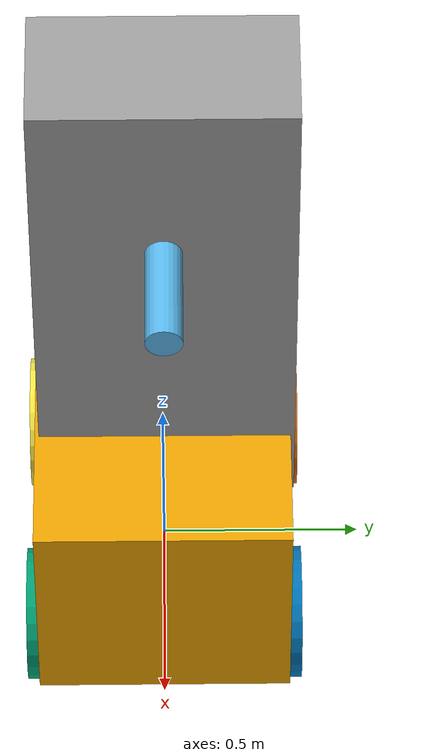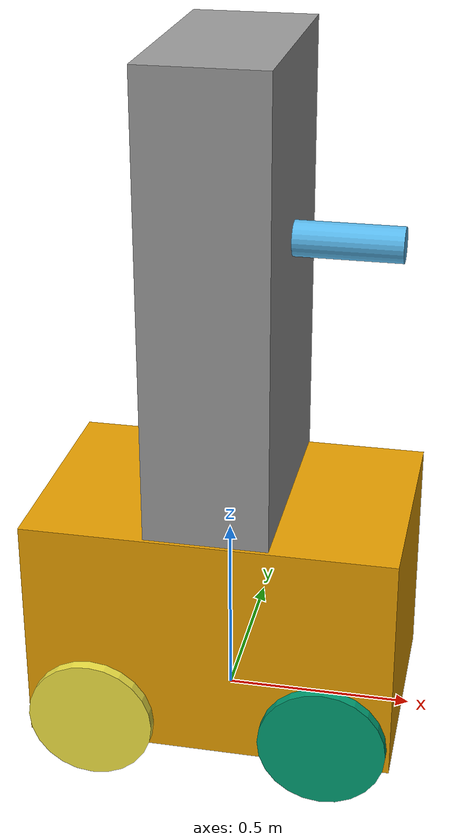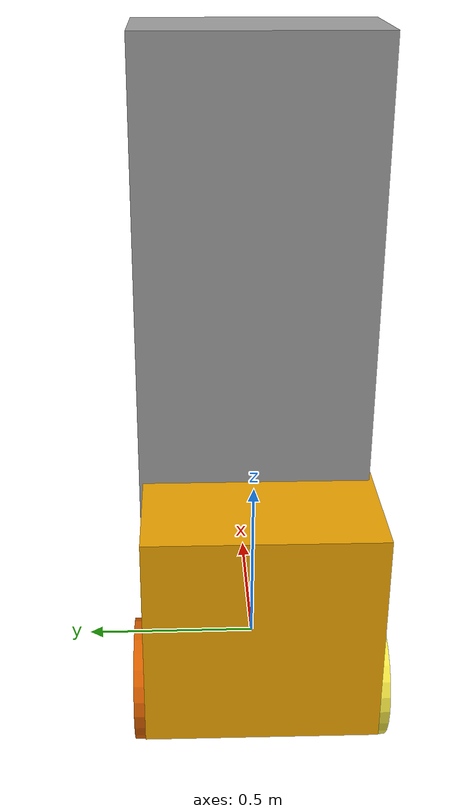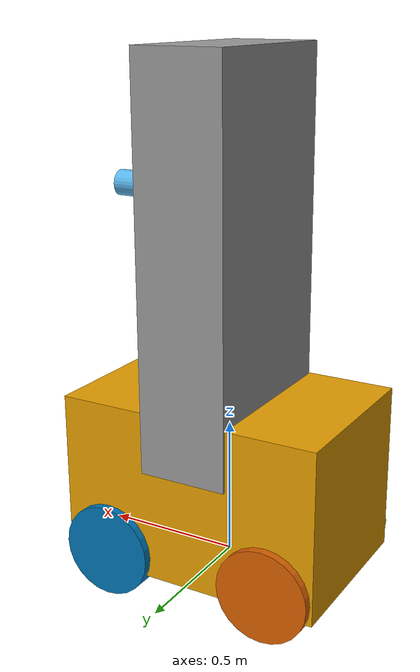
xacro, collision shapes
<?xml version="1.0"?>
<robot name="icerobot" xmlns:xacro="http://ros.org/wiki/xacro">

  <!-- Base Size -->
  <xacro:property name="base_x_size" value="0.96520000" />
  <xacro:property name="base_y_size" value="0.63500000" />
  <xacro:property name="base_z_size" value="0.6154100" />

  <!-- Platform Size -->
  <xacro:property name="platform_x_size" value="0.320000" />
  <xacro:property name="platform_y_size" value="0.63500000" />
  <xacro:property name="platform_z_size" value="1.4000000" />

  <!-- Wheel Mounting Positions -->
  <xacro:property name="wheelbase" value="0.3080" />
  <xacro:property name="track" value="0.33" />
  <xacro:property name="wheel_vertical_offset" value="0.07" />

  <!-- Wheel Properties -->
  <xacro:property name="wheel_length" value="0.11430" />
  <xacro:property name="wheel_radius" value="0.167" />

  <!-- Base inertia properties -->
  <xacro:property name="mass_base" value="34.33" />
  <xacro:property name="ixx_base" value="2.4304" />
  <xacro:property name="ixy_base" value="0.5116" />
  <xacro:property name="ixz_base" value="0.0091" />
  <xacro:property name="iyy_base" value="3.7564" />
  <xacro:property name="iyz_base" value="-0.0016" />
  <xacro:property name="izz_base" value="3.8077" />

  <!-- Platform inertia properties -->
  <xacro:property name="mass_platform" value="49.4938" />
  <xacro:property name="ixx_platform" value="16.83" />
  <xacro:property name="ixy_platform" value="0.3363" />
  <xacro:property name="ixz_platform" value="0.1616" />
  <xacro:property name="iyy_platform" value="3.9954" />
  <xacro:property name="iyz_platform" value="6.3377" />
  <xacro:property name="izz_platform" value="13.2782" />

  <!-- Wheel inertia properties -->
  <xacro:property name="mass_wheel" value="4" />
  <xacro:property name="ixx_wheel" value="0.0553" />
  <xacro:property name="ixy_wheel" value="0" />
  <xacro:property name="ixz_wheel" value="0" />
  <xacro:property name="iyy_wheel" value="0.0315" />
  <xacro:property name="iyz_wheel" value="0" />
  <xacro:property name="izz_wheel" value="0.0315" />

  <xacro:arg name="robot_namespace" default="/" />
  <xacro:property name="PI" value="3.14159"/>

  <!-- Robot base -->
  <link name="base_link">
    <visual>
      <origin rpy="0 0 0" xyz="0 0 0"/>
      <geometry>
        <mesh filename="package://icerobot_description/meshes/base.dae"/>
      </geometry>
    </visual>
    <collision>
      <origin xyz="0 0 ${base_z_size/2}" rpy="0 0 0" />
      <geometry>
        <box size="${base_x_size} ${base_y_size} ${base_z_size}"/>
      </geometry>
    </collision>
  </link>

  <link name="inertial_link">
    <inertial>
      <mass value="${mass_base}" />
      <origin xyz="-0.00065 -0.085 0.062" />
      <inertia ixx="${ixx_base}" ixy="${ixy_base}" ixz="${ixz_base}" iyy="${iyy_base}" iyz="${iyz_base}" izz="${izz_base}"/>
    </inertial>
  </link>

  <joint name="inertial_joint" type="fixed">
    <origin xyz="0 0 0" rpy="0 0 0" />
    <parent link="base_link" />
    <child link="inertial_link" />
  </joint>

  <!-- Wheel macros -->
  <xacro:macro name="wheel" params="prefix suffix reflect_side reflect_front">
    <link name="${prefix}_${suffix}_wheel">
      <visual>
       <origin xyz="0 0 0" rpy="0 0 ${reflect_side*PI/2}" />
       <geometry>
         <mesh filename="package://icerobot_description/meshes/wheel.dae"/>
       </geometry>
      </visual>
      <collision>
	<origin xyz="0 ${-1*reflect_side*0.04} 0" rpy="${PI/2} 0 0" />
        <geometry>
          <cylinder radius="${wheel_radius}" length="${wheel_length}"/>
        </geometry>
      </collision>
      <inertial>
        <mass value="${mass_wheel}" />
        <origin xyz="0 0 0" />
        <inertia ixx="${ixx_wheel}" ixy="${ixy_wheel}" ixz="${ixz_wheel}" iyy="${iyy_wheel}" iyz="${iyz_wheel}" izz="${izz_wheel}"/>
      </inertial>
    </link>

    <joint name="${prefix}_${suffix}_wheel_joint" type="continuous">
      <axis xyz="0 -1 0" rpy="0 0 0" />
      <parent link="base_link"/>
      <child link="${prefix}_${suffix}_wheel"/>
      <origin xyz="${reflect_front*wheelbase} ${reflect_side*track} ${wheel_vertical_offset}" rpy="0 0 0"/>
    </joint>

    <!-- Gazebo xacro -->
    <!-- Wheel parameters -->
    <gazebo reference="${prefix}_${suffix}_wheel">
      <mu1 value="1.0"/>
      <mu2 value="0.5"/>
      <kp value="100000000.0" />
      <kd value="1.0" />
      <fdir1 value="1 0 0"/>
    </gazebo>

    <transmission name="${prefix}_${suffix}_wheel_trans" type="SimpleTransmission">
      <type>transmission_interface/SimpleTransmission</type>
      <actuator name="${prefix}_${suffix}_wheel_motor">
        <mechanicalReduction>1</mechanicalReduction>
      </actuator>
      <joint name="${prefix}_${suffix}_wheel_joint">
        <hardwareInterface>hardware_interface/VelocityJointInterface</hardwareInterface>
      </joint>
    </transmission>

  </xacro:macro>
  <xacro:wheel prefix="front" suffix="left" reflect_side="-1" reflect_front="1"/>
  <xacro:wheel prefix="rear" suffix="left" reflect_side="-1" reflect_front="-1"/>
  <xacro:wheel prefix="front" suffix="right" reflect_side="1" reflect_front="1"/>
  <xacro:wheel prefix="rear" suffix="right" reflect_side="1" reflect_front="-1"/>

  <!-- Sensor Platform -->
  <joint name="platform_to_base" type="fixed">
    <parent link="base_link"/>
    <child link="platform"/>
    <origin rpy="0 0 0" xyz="0.1 0.01 0.4"/>
  </joint>

  <link name="platform">
    <visual>
      <origin rpy="0 0 0" xyz="0 0 0"/>
      <geometry>
        <mesh filename="package://icerobot_description/meshes/platform.dae"/>
      </geometry>
    </visual>
    <collision>
      <geometry>
        <box size="${platform_x_size} ${platform_y_size} ${platform_z_size}"/>
      </geometry>
      <origin rpy="0 0 0" xyz="-0.1 0 ${(platform_z_size/2)}"/>
    </collision>
    <inertial>
      <mass value="${mass_platform}" />
      <origin xyz="0 0 0" />
      <inertia ixx="${ixx_platform}" ixy="${ixy_platform}" ixz="${ixz_platform}" iyy="${iyy_platform}" iyz="${iyz_platform}" izz="${izz_platform}"/>
    </inertial>
  </link>

  <gazebo reference="platform">
    <material>Gazebo/Grey</material>
  </gazebo>

  <!-- Base footprint is on the ground under the robot -->
  <link name="base_footprint"/>

  <joint name="base_footprint_joint" type="fixed">
    <origin xyz="0 0 -0.1" rpy="0 0 0" />
    <parent link="base_link" />
    <child link="base_footprint" />
  </joint>

  <!-- IMU Link is the standard mounting position for the UM6 IMU.-->
  <!-- Can be modified with environment variables in /etc/ros/setup.bash -->
  <link name="imu_link"/>
  <joint name="imu_joint" type="fixed">
    <origin xyz="0.19 0 0.149" rpy="0 -${PI/2} ${PI}" />
    <parent link="base_link" />
    <child link="imu_link" />
  </joint>
  <gazebo reference="imu_link">
  </gazebo>

  <joint name="scan_joint" type="fixed">
    <parent link="base_link"/>
    <child link="base_scan"/>
    <origin xyz="0.275 0.008 1.322" rpy="${PI/2} 0 ${PI/2}"/>
  </joint>

  <link name="base_scan">
    <visual>
      <origin xyz="0 0 0.0" rpy="0 0 0"/>
      <geometry>
        <mesh filename="package://icerobot_description/meshes/lidar.dae"/>
      </geometry>
    </visual>
    <collision>
      <origin xyz="0 0 0" rpy="0 0 0"/>
      <geometry>
        <cylinder length="0.315" radius="0.045"/>
      </geometry>
    </collision>
    <inertial>
      <mass value="0.83" />
      <origin xyz="0 0 0" />
      <inertia ixx="0.002" ixy="0.0" ixz="0.0"
               iyy="0.001" iyz="0.0"
               izz="0.002" />
    </inertial>
  </link>

  <joint name="camera_joint" type="fixed">
	  <origin xyz="0.10 0.007 1.345" rpy="0 0 -${PI/2}"/>
    <parent link="base_link"/>
    <child link="camera_link"/>
  </joint>

  <link name="camera_link">
    <visual>
      <origin xyz="0 0 0" rpy="0 0 0"/>
      <geometry>
       <mesh filename="package://icerobot_description/meshes/camera.dae" />
      </geometry>
    </visual>
    <collision>
      <origin xyz="0 0 0" rpy="0 0 0"/>
      <geometry>
        <box size="0.012 0.132 0.020"/>
      </geometry>
    </collision>
    <inertial>
      <mass value="0.44" />
      <origin xyz="0 0 0" />
      <inertia ixx="0.000881243" ixy="0.0" ixz="0.0"
               iyy="0.000498940" iyz="0.0"
               izz="0.000879257" />
    </inertial>
  </link>

  <joint name="camera_rgb_joint" type="fixed">
    <origin xyz="0 0 -0.5" rpy="0 0 -${PI}"/>
    <parent link="camera_link"/>
    <child link="camera_rgb_frame"/>
  </joint>
  <link name="camera_rgb_frame"/>

  <joint name="camera_rgb_optical_joint" type="fixed">
    <origin xyz="0 0 0" rpy="0 0 0"/>
    <parent link="camera_rgb_frame"/>
    <child link="camera_rgb_optical_frame"/>
  </joint>
  <link name="camera_rgb_optical_frame"/>

  <joint name="camera_depth_joint" type="fixed">
    <origin xyz="0 0 0" rpy="0 0 0"/>
    <parent link="camera_link"/>
    <child link="camera_depth_frame"/>
  </joint>
  <link name="camera_depth_frame"/>

  <joint name="camera_depth_optical_joint" type="fixed">
    <origin xyz="0 0 0" rpy="-${PI} 0 0"/>
    <parent link="camera_depth_frame"/>
    <child link="camera_depth_optical_frame"/>
  </joint>
  <link name="camera_depth_optical_frame"/>

  <gazebo>
    <plugin name="gazebo_ros_control" filename="libgazebo_ros_control.so">
      <robotNamespace>$(arg robot_namespace)</robotNamespace>
      <legacyModeNS>true</legacyModeNS>
    </plugin>
  </gazebo>

  <gazebo>
    <gravity>true</gravity>
    <sensor name="imu_sensor" type="imu">
      <always_on>true</always_on>
      <update_rate>100</update_rate>
      <visualize>true</visualize>
      <topic>__default_topic__</topic>
      <plugin name="imu_controller" filename="libhector_gazebo_ros_imu.so">
        <robotNamespace>$(arg robot_namespace)</robotNamespace>
        <updateRate>50.0</updateRate>
        <bodyName>base_link</bodyName>
        <topicName>imu/data</topicName>
	<xyzOffset>0 0 0</xyzOffset>
        <rpyOffset>0 0 0</rpyOffset>
        <accelDrift>0.005 0.005 0.005</accelDrift>
        <accelGaussianNoise>0.005 0.005 0.005</accelGaussianNoise>
        <rateDrift>0.005 0.005 0.005 </rateDrift>
        <rateGaussianNoise>0.005 0.005 0.005 </rateGaussianNoise>
        <headingDrift>0.005</headingDrift>
        <headingGaussianNoise>0.005</headingGaussianNoise>
      </plugin>
    </sensor>
  </gazebo>

  <gazebo>
    <plugin name="gps_controller" filename="libhector_gazebo_ros_gps.so">
      <robotNamespace>$(arg robot_namespace)</robotNamespace>
      <updateRate>40</updateRate>
      <bodyName>base_link</bodyName>
      <frameId>base_link</frameId>
      <topicName>navsat/fix</topicName>
      <velocityTopicName>navsat/vel</velocityTopicName>
      <referenceLatitude>42.86</referenceLatitude>
      <referenceLongitude>-80.27</referenceLongitude>
      <referenceHeading>0</referenceHeading>
      <referenceAltitude>0</referenceAltitude>
      <drift>0.0001 0.0001 0.0001</drift>
    </plugin>
  </gazebo>

  <gazebo reference="base_scan">
    <sensor type="ray" name="velodyne_VLP16">
      <pose>2 0 0 0 0 0</pose>
      <visualize>false</visualize>
      <update_rate>10</update_rate>
      <ray>
        <scan>
          <horizontal>
            <samples>1875</samples>
            <resolution>1</resolution>
	    <min_angle>-${PI}</min_angle>
	    <max_angle>${PI}</max_angle>
          </horizontal>
          <vertical>
            <samples>16</samples>
            <resolution>1</resolution>
            <min_angle>-${15.0*PI/180.0}</min_angle>
            <max_angle> ${15.0*PI/180.0}</max_angle>
          </vertical>
        </scan>
        <range>
          <min>0.3</min>
          <max>2</max>
          <resolution>0.001</resolution>
        </range>
        <noise>
          <type>gaussian</type>
          <mean>0.0</mean>
          <stddev>0.0</stddev>
        </noise>
      </ray>
      <plugin name="gazebo_ros_laser_controller" filename="libgazebo_ros_laser.so">
	<robotNamespace>$(arg robot_namespace)</robotNamespace>
	<topicName>scan</topicName>
        <frameName>base_scan</frameName>
	<min_range>0.9</min_range>
	<max_range>2</max_range>
        <gaussianNoise>0.008</gaussianNoise>
      </plugin>
    </sensor>
  </gazebo>

  <!-- camera -->
  <gazebo reference="camera_rgb_frame">
    <sensor type="camera" name="camera1">
      <update_rate>30.0</update_rate>
      <camera name="head">
        <horizontal_fov>1.3962634</horizontal_fov>
        <image>
          <width>800</width>
          <height>800</height>
          <format>R8G8B8</format>
        </image>
        <clip>
          <near>0.02</near>
          <far>300</far>
        </clip>
        <noise>
          <type>gaussian</type>
          <!-- Noise is sampled independently per pixel on each frame.
               That pixel's noise value is added to each of its color
               channels, which at that point lie in the range [0,1]. -->
          <mean>0.0</mean>
          <stddev>0.007</stddev>
        </noise>
      </camera>
      <plugin name="camera_controller" filename="libgazebo_ros_camera.so">
	<robotNamespace>$(arg robot_namespace)</robotNamespace>
        <alwaysOn>true</alwaysOn>
        <updateRate>0.0</updateRate>
        <cameraName>rrbot/camera1</cameraName>
        <imageTopicName>image_raw</imageTopicName>
        <cameraInfoTopicName>camera_info</cameraInfoTopicName>
        <frameName>camera_link</frameName>
        <hackBaseline>0.07</hackBaseline>
        <distortionK1>0.0</distortionK1>
        <distortionK2>0.0</distortionK2>
        <distortionK3>0.0</distortionK3>
        <distortionT1>0.0</distortionT1>
        <distortionT2>0.0</distortionT2>
      </plugin>
    </sensor>
  </gazebo>

  <!-- depth camera -->
  <gazebo reference="camera_rgb_frame">
    <sensor type="depth" name="camera1">
        <always_on>1</always_on>
        <visualize>true</visualize>
        <camera>
            <horizontal_fov>1.047</horizontal_fov>
            <image>
                <width>640</width>
                <height>480</height>
                <format>R8G8B8</format>
            </image>
            <depth_camera>

            </depth_camera>
            <clip>
                <near>0.1</near>
                <far>100</far>
            </clip>
        </camera>
        <plugin name="camera_controller" filename="libgazebo_ros_openni_kinect.so">
	  <robotNamespace>$(arg robot_namespace)</robotNamespace>
          <alwaysOn>true</alwaysOn>
          <updateRate>10.0</updateRate>
          <cameraName>camera</cameraName>
          <frameName>camera_link</frameName>
          <imageTopicName>rgb/image_raw</imageTopicName>
          <depthImageTopicName>depth/image_raw</depthImageTopicName>
          <pointCloudTopicName>depth/points</pointCloudTopicName>
          <cameraInfoTopicName>rgb/camera_info</cameraInfoTopicName>
          <depthImageCameraInfoTopicName>depth/camera_info</depthImageCameraInfoTopicName>
          <pointCloudCutoff>0.4</pointCloudCutoff>
          <hackBaseline>0.07</hackBaseline>
          <distortionK1>0.0</distortionK1>
          <distortionK2>0.0</distortionK2>
          <distortionK3>0.0</distortionK3>
          <distortionT1>0.0</distortionT1>
          <distortionT2>0.0</distortionT2>
          <CxPrime>0.0</CxPrime>
          <Cx>0.0</Cx>
          <Cy>0.0</Cy>
          <focalLength>0.0</focalLength>
        </plugin>
    </sensor>
  </gazebo>
</robot>
